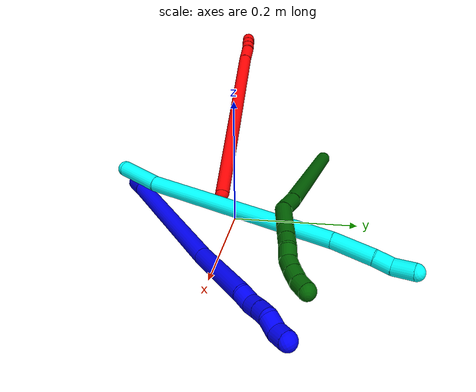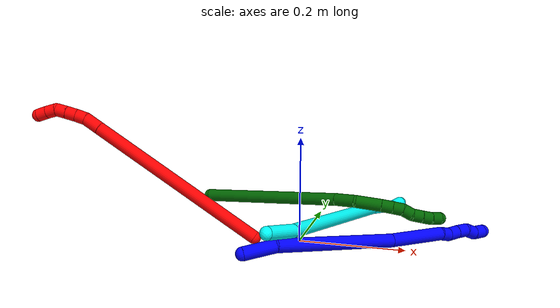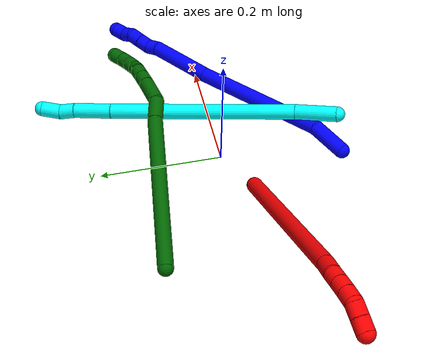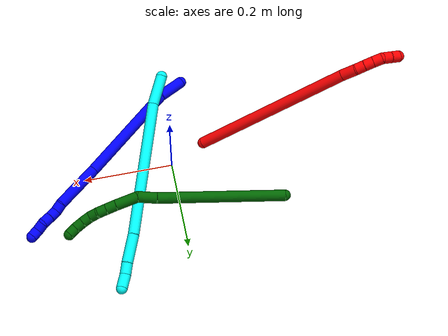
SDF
<sdf version="1.7">
 <world name="default">
  <model name="1">
   <static>0</static>
   <link name="1">
    <collision name="collision-cylinder-e_1_1_4">
     <pose>0.027719 0.004059 0.011163 -0.348718 1.16595 -0.231276</pose>
     <geometry><cylinder><radius>0.0125</radius><length>0.060314</length></cylinder></geometry>
     <surface>
      <friction><ode><mu>1.16</mu><mu2>1.16</mu2><slip1>0</slip1><slip2>0</slip2></ode></friction>
      <contact><ode><kp>1e+06</kp><kd>1</kd><max_vel>0</max_vel><min_depth>0.001</min_depth></ode></contact>
     </surface>
    </collision>
    <visual name="visual-cylinder-e_1_1_4">
     <pose>0.027719 0.004059 0.011163 -0.348718 1.16595 -0.231276</pose>
     <geometry><cylinder><radius>0.0125</radius><length>0.060314</length></cylinder></geometry>
     <material><ambient>0 0 1 1</ambient></material>
    </visual>
    <collision name="collision-cylinder-e_2_4_5">
     <pose>0.147286 0.014483 0.092315 -0.090705 0.917672 -0.044832</pose>
     <geometry><cylinder><radius>0.0125</radius><length>0.2313</length></cylinder></geometry>
     <surface>
      <friction><ode><mu>1.16</mu><mu2>1.16</mu2><slip1>0</slip1><slip2>0</slip2></ode></friction>
      <contact><ode><kp>1e+06</kp><kd>1</kd><max_vel>0</max_vel><min_depth>0.001</min_depth></ode></contact>
     </surface>
    </collision>
    <visual name="visual-cylinder-e_2_4_5">
     <pose>0.147286 0.014483 0.092315 -0.090705 0.917672 -0.044832</pose>
     <geometry><cylinder><radius>0.0125</radius><length>0.2313</length></cylinder></geometry>
     <material><ambient>0 0 1 1</ambient></material>
    </visual>
    <collision name="collision-cylinder-e_3_5_6">
     <pose>0.284541 0.022809 0.191206 -0.067696 1.0029 -0.03712</pose>
     <geometry><cylinder><radius>0.0125</radius><length>0.107721</length></cylinder></geometry>
     <surface>
      <friction><ode><mu>1.16</mu><mu2>1.16</mu2><slip1>0</slip1><slip2>0</slip2></ode></friction>
      <contact><ode><kp>1e+06</kp><kd>1</kd><max_vel>0</max_vel><min_depth>0.001</min_depth></ode></contact>
     </surface>
    </collision>
    <visual name="visual-cylinder-e_3_5_6">
     <pose>0.284541 0.022809 0.191206 -0.067696 1.0029 -0.03712</pose>
     <geometry><cylinder><radius>0.0125</radius><length>0.107721</length></cylinder></geometry>
     <material><ambient>0 0 1 1</ambient></material>
    </visual>
    <collision name="collision-cylinder-e_4_6_7">
     <pose>0.336863 0.024677 0.227555 0.012235 0.74851 0.004805</pose>
     <geometry><cylinder><radius>0.0125</radius><length>0.020324</length></cylinder></geometry>
     <surface>
      <friction><ode><mu>1.16</mu><mu2>1.16</mu2><slip1>0</slip1><slip2>0</slip2></ode></friction>
      <contact><ode><kp>1e+06</kp><kd>1</kd><max_vel>0</max_vel><min_depth>0.001</min_depth></ode></contact>
     </surface>
    </collision>
    <visual name="visual-cylinder-e_4_6_7">
     <pose>0.336863 0.024677 0.227555 0.012235 0.74851 0.004805</pose>
     <geometry><cylinder><radius>0.0125</radius><length>0.020324</length></cylinder></geometry>
     <material><ambient>0 0 1 1</ambient></material>
    </visual>
    <collision name="collision-cylinder-e_5_7_8">
     <pose>0.352889 0.02457 0.239298 0.003776 1.12998 0.002394</pose>
     <geometry><cylinder><radius>0.0125</radius><length>0.020146</length></cylinder></geometry>
     <surface>
      <friction><ode><mu>1.16</mu><mu2>1.16</mu2><slip1>0</slip1><slip2>0</slip2></ode></friction>
      <contact><ode><kp>1e+06</kp><kd>1</kd><max_vel>0</max_vel><min_depth>0.001</min_depth></ode></contact>
     </surface>
    </collision>
    <visual name="visual-cylinder-e_5_7_8">
     <pose>0.352889 0.02457 0.239298 0.003776 1.12998 0.002394</pose>
     <geometry><cylinder><radius>0.0125</radius><length>0.020146</length></cylinder></geometry>
     <material><ambient>0 0 1 1</ambient></material>
    </visual>
    <collision name="collision-cylinder-e_6_8_9">
     <pose>0.370919 0.025174 0.248194 -0.134042 1.09112 -0.081442</pose>
     <geometry><cylinder><radius>0.0125</radius><length>0.020109</length></cylinder></geometry>
     <surface>
      <friction><ode><mu>1.16</mu><mu2>1.16</mu2><slip1>0</slip1><slip2>0</slip2></ode></friction>
      <contact><ode><kp>1e+06</kp><kd>1</kd><max_vel>0</max_vel><min_depth>0.001</min_depth></ode></contact>
     </surface>
    </collision>
    <visual name="visual-cylinder-e_6_8_9">
     <pose>0.370919 0.025174 0.248194 -0.134042 1.09112 -0.081442</pose>
     <geometry><cylinder><radius>0.0125</radius><length>0.020109</length></cylinder></geometry>
     <material><ambient>0 0 1 1</ambient></material>
    </visual>
    <collision name="collision-cylinder-e_7_9_10">
     <pose>0.385467 0.027155 0.260989 -0.164534 0.59539 -0.050584</pose>
     <geometry><cylinder><radius>0.0125</radius><length>0.02007</length></cylinder></geometry>
     <surface>
      <friction><ode><mu>1.16</mu><mu2>1.16</mu2><slip1>0</slip1><slip2>0</slip2></ode></friction>
      <contact><ode><kp>1e+06</kp><kd>1</kd><max_vel>0</max_vel><min_depth>0.001</min_depth></ode></contact>
     </surface>
    </collision>
    <visual name="visual-cylinder-e_7_9_10">
     <pose>0.385467 0.027155 0.260989 -0.164534 0.59539 -0.050584</pose>
     <geometry><cylinder><radius>0.0125</radius><length>0.02007</length></cylinder></geometry>
     <material><ambient>0 0 1 1</ambient></material>
    </visual>
    <collision name="collision-cylinder-e_8_10_2">
     <pose>0.399667 0.028438 0.274349 0.014942 1.02858 0.008442</pose>
     <geometry><cylinder><radius>0.0125</radius><length>0.020015</length></cylinder></geometry>
     <surface>
      <friction><ode><mu>1.16</mu><mu2>1.16</mu2><slip1>0</slip1><slip2>0</slip2></ode></friction>
      <contact><ode><kp>1e+06</kp><kd>1</kd><max_vel>0</max_vel><min_depth>0.001</min_depth></ode></contact>
     </surface>
    </collision>
    <visual name="visual-cylinder-e_8_10_2">
     <pose>0.399667 0.028438 0.274349 0.014942 1.02858 0.008442</pose>
     <geometry><cylinder><radius>0.0125</radius><length>0.020015</length></cylinder></geometry>
     <material><ambient>0 0 1 1</ambient></material>
    </visual>
    <collision name="collision-sphere-2">
     <pose>0.408239 0.028361 0.279512 0 -0 0</pose>
     <geometry><sphere><radius>0.0125</radius></sphere></geometry>
     <surface>
      <friction><ode><mu>1.16</mu><mu2>1.16</mu2><slip1>0</slip1><slip2>0</slip2></ode></friction>
      <contact><ode><kp>1e+06</kp><kd>1</kd><max_vel>0</max_vel><min_depth>0.001</min_depth></ode></contact>
     </surface>
    </collision>
    <visual name="visual-sphere-2">
     <pose>0.408239 0.028361 0.279512 0 -0 0</pose>
     <geometry><sphere><radius>0.0125</radius></sphere></geometry>
     <material><ambient>0 0 1 1</ambient></material>
    </visual>
    <collision name="collision-sphere-10">
     <pose>0.391095 0.028516 0.269185 0 -0 0</pose>
     <geometry><sphere><radius>0.0125</radius></sphere></geometry>
     <surface>
      <friction><ode><mu>1.16</mu><mu2>1.16</mu2><slip1>0</slip1><slip2>0</slip2></ode></friction>
      <contact><ode><kp>1e+06</kp><kd>1</kd><max_vel>0</max_vel><min_depth>0.001</min_depth></ode></contact>
     </surface>
    </collision>
    <visual name="visual-sphere-10">
     <pose>0.391095 0.028516 0.269185 0 -0 0</pose>
     <geometry><sphere><radius>0.0125</radius></sphere></geometry>
     <material><ambient>0 0 1 1</ambient></material>
    </visual>
    <collision name="collision-sphere-9">
     <pose>0.379839 0.025794 0.252793 0 -0 0</pose>
     <geometry><sphere><radius>0.0125</radius></sphere></geometry>
     <surface>
      <friction><ode><mu>1.16</mu><mu2>1.16</mu2><slip1>0</slip1><slip2>0</slip2></ode></friction>
      <contact><ode><kp>1e+06</kp><kd>1</kd><max_vel>0</max_vel><min_depth>0.001</min_depth></ode></contact>
     </surface>
    </collision>
    <visual name="visual-sphere-9">
     <pose>0.379839 0.025794 0.252793 0 -0 0</pose>
     <geometry><sphere><radius>0.0125</radius></sphere></geometry>
     <material><ambient>0 0 1 1</ambient></material>
    </visual>
    <collision name="collision-sphere-4">
     <pose>0.055438 0.008117 0.022327 0 -0 0</pose>
     <geometry><sphere><radius>0.0125</radius></sphere></geometry>
     <surface>
      <friction><ode><mu>1.16</mu><mu2>1.16</mu2><slip1>0</slip1><slip2>0</slip2></ode></friction>
      <contact><ode><kp>1e+06</kp><kd>1</kd><max_vel>0</max_vel><min_depth>0.001</min_depth></ode></contact>
     </surface>
    </collision>
    <visual name="visual-sphere-4">
     <pose>0.055438 0.008117 0.022327 0 -0 0</pose>
     <geometry><sphere><radius>0.0125</radius></sphere></geometry>
     <material><ambient>0 0 1 1</ambient></material>
    </visual>
    <collision name="collision-sphere-1">
     <geometry><sphere><radius>0.0125</radius></sphere></geometry>
     <surface>
      <friction><ode><mu>1.16</mu><mu2>1.16</mu2><slip1>0</slip1><slip2>0</slip2></ode></friction>
      <contact><ode><kp>1e+06</kp><kd>1</kd><max_vel>0</max_vel><min_depth>0.001</min_depth></ode></contact>
     </surface>
    </collision>
    <visual name="visual-sphere-1">
     <geometry><sphere><radius>0.0125</radius></sphere></geometry>
     <material><ambient>0 0 1 1</ambient></material>
    </visual>
    <collision name="collision-sphere-8">
     <pose>0.361999 0.024554 0.243596 0 -0 0</pose>
     <geometry><sphere><radius>0.0125</radius></sphere></geometry>
     <surface>
      <friction><ode><mu>1.16</mu><mu2>1.16</mu2><slip1>0</slip1><slip2>0</slip2></ode></friction>
      <contact><ode><kp>1e+06</kp><kd>1</kd><max_vel>0</max_vel><min_depth>0.001</min_depth></ode></contact>
     </surface>
    </collision>
    <visual name="visual-sphere-8">
     <pose>0.361999 0.024554 0.243596 0 -0 0</pose>
     <geometry><sphere><radius>0.0125</radius></sphere></geometry>
     <material><ambient>0 0 1 1</ambient></material>
    </visual>
    <collision name="collision-sphere-5">
     <pose>0.239134 0.020849 0.162303 0 -0 0</pose>
     <geometry><sphere><radius>0.0125</radius></sphere></geometry>
     <surface>
      <friction><ode><mu>1.16</mu><mu2>1.16</mu2><slip1>0</slip1><slip2>0</slip2></ode></friction>
      <contact><ode><kp>1e+06</kp><kd>1</kd><max_vel>0</max_vel><min_depth>0.001</min_depth></ode></contact>
     </surface>
    </collision>
    <visual name="visual-sphere-5">
     <pose>0.239134 0.020849 0.162303 0 -0 0</pose>
     <geometry><sphere><radius>0.0125</radius></sphere></geometry>
     <material><ambient>0 0 1 1</ambient></material>
    </visual>
    <collision name="collision-sphere-6">
     <pose>0.329947 0.024768 0.220109 0 -0 0</pose>
     <geometry><sphere><radius>0.0125</radius></sphere></geometry>
     <surface>
      <friction><ode><mu>1.16</mu><mu2>1.16</mu2><slip1>0</slip1><slip2>0</slip2></ode></friction>
      <contact><ode><kp>1e+06</kp><kd>1</kd><max_vel>0</max_vel><min_depth>0.001</min_depth></ode></contact>
     </surface>
    </collision>
    <visual name="visual-sphere-6">
     <pose>0.329947 0.024768 0.220109 0 -0 0</pose>
     <geometry><sphere><radius>0.0125</radius></sphere></geometry>
     <material><ambient>0 0 1 1</ambient></material>
    </visual>
    <collision name="collision-sphere-7">
     <pose>0.343779 0.024586 0.235 0 -0 0</pose>
     <geometry><sphere><radius>0.0125</radius></sphere></geometry>
     <surface>
      <friction><ode><mu>1.16</mu><mu2>1.16</mu2><slip1>0</slip1><slip2>0</slip2></ode></friction>
      <contact><ode><kp>1e+06</kp><kd>1</kd><max_vel>0</max_vel><min_depth>0.001</min_depth></ode></contact>
     </surface>
    </collision>
    <visual name="visual-sphere-7">
     <pose>0.343779 0.024586 0.235 0 -0 0</pose>
     <geometry><sphere><radius>0.0125</radius></sphere></geometry>
     <material><ambient>0 0 1 1</ambient></material>
    </visual>
    <inertial>
     <pose>0.207081 0.017337 0.135577 0 -0 0</pose>
     <mass>0.5</mass>
     <inertia>
      <ixx>0.000701</ixx>
      <ixy>0</ixy>
      <ixz>0</ixz>
      <iyy>0.001144</iyy>
      <iyz>0</iyz>
      <izz>-0.000985</izz>
     </inertia>
    </inertial>
   </link>
   <pose>-0.055217 -0.187703 0.033776 -2.88548 -0.555201 0.57735</pose>
  </model>
  <model name="2">
   <static>0</static>
   <link name="2">
    <collision name="collision-cylinder-e_1_1_4">
     <pose>-0.018282 0.003272 0.181965 -0.017981 -0.100117 0.000901</pose>
     <geometry><cylinder><radius>0.0125</radius><length>0.36582</length></cylinder></geometry>
     <surface>
      <friction><ode><mu>1.16</mu><mu2>1.16</mu2><slip1>0</slip1><slip2>0</slip2></ode></friction>
      <contact><ode><kp>1e+06</kp><kd>1</kd><max_vel>0</max_vel><min_depth>0.001</min_depth></ode></contact>
     </surface>
    </collision>
    <visual name="visual-cylinder-e_1_1_4">
     <pose>-0.018282 0.003272 0.181965 -0.017981 -0.100117 0.000901</pose>
     <geometry><cylinder><radius>0.0125</radius><length>0.36582</length></cylinder></geometry>
     <material><ambient>1 0 0 1</ambient></material>
    </visual>
    <collision name="collision-cylinder-e_2_4_5">
     <pose>-0.038171 0.00784 0.380282 -0.079073 -0.097655 0.003866</pose>
     <geometry><cylinder><radius>0.0125</radius><length>0.032965</length></cylinder></geometry>
     <surface>
      <friction><ode><mu>1.16</mu><mu2>1.16</mu2><slip1>0</slip1><slip2>0</slip2></ode></friction>
      <contact><ode><kp>1e+06</kp><kd>1</kd><max_vel>0</max_vel><min_depth>0.001</min_depth></ode></contact>
     </surface>
    </collision>
    <visual name="visual-cylinder-e_2_4_5">
     <pose>-0.038171 0.00784 0.380282 -0.079073 -0.097655 0.003866</pose>
     <geometry><cylinder><radius>0.0125</radius><length>0.032965</length></cylinder></geometry>
     <material><ambient>1 0 0 1</ambient></material>
    </visual>
    <collision name="collision-cylinder-e_3_5_6">
     <pose>-0.043397 0.00937 0.406021 -0.024933 -0.367938 0.00464</pose>
     <geometry><cylinder><radius>0.0125</radius><length>0.020126</length></cylinder></geometry>
     <surface>
      <friction><ode><mu>1.16</mu><mu2>1.16</mu2><slip1>0</slip1><slip2>0</slip2></ode></friction>
      <contact><ode><kp>1e+06</kp><kd>1</kd><max_vel>0</max_vel><min_depth>0.001</min_depth></ode></contact>
     </surface>
    </collision>
    <visual name="visual-cylinder-e_3_5_6">
     <pose>-0.043397 0.00937 0.406021 -0.024933 -0.367938 0.00464</pose>
     <geometry><cylinder><radius>0.0125</radius><length>0.020126</length></cylinder></geometry>
     <material><ambient>1 0 0 1</ambient></material>
    </visual>
    <collision name="collision-cylinder-e_4_6_7">
     <pose>-0.0511 0.009895 0.42474 -0.031152 -0.412213 0.006514</pose>
     <geometry><cylinder><radius>0.0125</radius><length>0.020381</length></cylinder></geometry>
     <surface>
      <friction><ode><mu>1.16</mu><mu2>1.16</mu2><slip1>0</slip1><slip2>0</slip2></ode></friction>
      <contact><ode><kp>1e+06</kp><kd>1</kd><max_vel>0</max_vel><min_depth>0.001</min_depth></ode></contact>
     </surface>
    </collision>
    <visual name="visual-cylinder-e_4_6_7">
     <pose>-0.0511 0.009895 0.42474 -0.031152 -0.412213 0.006514</pose>
     <geometry><cylinder><radius>0.0125</radius><length>0.020381</length></cylinder></geometry>
     <material><ambient>1 0 0 1</ambient></material>
    </visual>
    <collision name="collision-cylinder-e_5_7_8">
     <pose>-0.059453 0.010753 0.443465 -0.060368 -0.426125 0.013064</pose>
     <geometry><cylinder><radius>0.0125</radius><length>0.020666</length></cylinder></geometry>
     <surface>
      <friction><ode><mu>1.16</mu><mu2>1.16</mu2><slip1>0</slip1><slip2>0</slip2></ode></friction>
      <contact><ode><kp>1e+06</kp><kd>1</kd><max_vel>0</max_vel><min_depth>0.001</min_depth></ode></contact>
     </surface>
    </collision>
    <visual name="visual-cylinder-e_5_7_8">
     <pose>-0.059453 0.010753 0.443465 -0.060368 -0.426125 0.013064</pose>
     <geometry><cylinder><radius>0.0125</radius><length>0.020666</length></cylinder></geometry>
     <material><ambient>1 0 0 1</ambient></material>
    </visual>
    <collision name="collision-cylinder-e_6_8_9">
     <pose>-0.071543 0.01351 0.458719 -0.357339 -0.895805 0.173108</pose>
     <geometry><cylinder><radius>0.0125</radius><length>0.020028</length></cylinder></geometry>
     <surface>
      <friction><ode><mu>1.16</mu><mu2>1.16</mu2><slip1>0</slip1><slip2>0</slip2></ode></friction>
      <contact><ode><kp>1e+06</kp><kd>1</kd><max_vel>0</max_vel><min_depth>0.001</min_depth></ode></contact>
     </surface>
    </collision>
    <visual name="visual-cylinder-e_6_8_9">
     <pose>-0.071543 0.01351 0.458719 -0.357339 -0.895805 0.173108</pose>
     <geometry><cylinder><radius>0.0125</radius><length>0.020028</length></cylinder></geometry>
     <material><ambient>1 0 0 1</ambient></material>
    </visual>
    <collision name="collision-cylinder-e_7_9_2">
     <pose>-0.087504 0.017885 0.469971 -0.385324 -0.950615 0.200131</pose>
     <geometry><cylinder><radius>0.0125</radius><length>0.020014</length></cylinder></geometry>
     <surface>
      <friction><ode><mu>1.16</mu><mu2>1.16</mu2><slip1>0</slip1><slip2>0</slip2></ode></friction>
      <contact><ode><kp>1e+06</kp><kd>1</kd><max_vel>0</max_vel><min_depth>0.001</min_depth></ode></contact>
     </surface>
    </collision>
    <visual name="visual-cylinder-e_7_9_2">
     <pose>-0.087504 0.017885 0.469971 -0.385324 -0.950615 0.200131</pose>
     <geometry><cylinder><radius>0.0125</radius><length>0.020014</length></cylinder></geometry>
     <material><ambient>1 0 0 1</ambient></material>
    </visual>
    <collision name="collision-sphere-2">
     <pose>-0.095647 0.020071 0.47536 0 -0 0</pose>
     <geometry><sphere><radius>0.0125</radius></sphere></geometry>
     <surface>
      <friction><ode><mu>1.16</mu><mu2>1.16</mu2><slip1>0</slip1><slip2>0</slip2></ode></friction>
      <contact><ode><kp>1e+06</kp><kd>1</kd><max_vel>0</max_vel><min_depth>0.001</min_depth></ode></contact>
     </surface>
    </collision>
    <visual name="visual-sphere-2">
     <pose>-0.095647 0.020071 0.47536 0 -0 0</pose>
     <geometry><sphere><radius>0.0125</radius></sphere></geometry>
     <material><ambient>1 0 0 1</ambient></material>
    </visual>
    <collision name="collision-sphere-9">
     <pose>-0.079361 0.015699 0.464581 0 -0 0</pose>
     <geometry><sphere><radius>0.0125</radius></sphere></geometry>
     <surface>
      <friction><ode><mu>1.16</mu><mu2>1.16</mu2><slip1>0</slip1><slip2>0</slip2></ode></friction>
      <contact><ode><kp>1e+06</kp><kd>1</kd><max_vel>0</max_vel><min_depth>0.001</min_depth></ode></contact>
     </surface>
    </collision>
    <visual name="visual-sphere-9">
     <pose>-0.079361 0.015699 0.464581 0 -0 0</pose>
     <geometry><sphere><radius>0.0125</radius></sphere></geometry>
     <material><ambient>1 0 0 1</ambient></material>
    </visual>
    <collision name="collision-sphere-4">
     <pose>-0.036564 0.006544 0.36393 0 -0 0</pose>
     <geometry><sphere><radius>0.0125</radius></sphere></geometry>
     <surface>
      <friction><ode><mu>1.16</mu><mu2>1.16</mu2><slip1>0</slip1><slip2>0</slip2></ode></friction>
      <contact><ode><kp>1e+06</kp><kd>1</kd><max_vel>0</max_vel><min_depth>0.001</min_depth></ode></contact>
     </surface>
    </collision>
    <visual name="visual-sphere-4">
     <pose>-0.036564 0.006544 0.36393 0 -0 0</pose>
     <geometry><sphere><radius>0.0125</radius></sphere></geometry>
     <material><ambient>1 0 0 1</ambient></material>
    </visual>
    <collision name="collision-sphere-1">
     <geometry><sphere><radius>0.0125</radius></sphere></geometry>
     <surface>
      <friction><ode><mu>1.16</mu><mu2>1.16</mu2><slip1>0</slip1><slip2>0</slip2></ode></friction>
      <contact><ode><kp>1e+06</kp><kd>1</kd><max_vel>0</max_vel><min_depth>0.001</min_depth></ode></contact>
     </surface>
    </collision>
    <visual name="visual-sphere-1">
     <geometry><sphere><radius>0.0125</radius></sphere></geometry>
     <material><ambient>1 0 0 1</ambient></material>
    </visual>
    <collision name="collision-sphere-8">
     <pose>-0.063725 0.011321 0.452856 0 -0 0</pose>
     <geometry><sphere><radius>0.0125</radius></sphere></geometry>
     <surface>
      <friction><ode><mu>1.16</mu><mu2>1.16</mu2><slip1>0</slip1><slip2>0</slip2></ode></friction>
      <contact><ode><kp>1e+06</kp><kd>1</kd><max_vel>0</max_vel><min_depth>0.001</min_depth></ode></contact>
     </surface>
    </collision>
    <visual name="visual-sphere-8">
     <pose>-0.063725 0.011321 0.452856 0 -0 0</pose>
     <geometry><sphere><radius>0.0125</radius></sphere></geometry>
     <material><ambient>1 0 0 1</ambient></material>
    </visual>
    <collision name="collision-sphere-5">
     <pose>-0.039778 0.009136 0.396635 0 -0 0</pose>
     <geometry><sphere><radius>0.0125</radius></sphere></geometry>
     <surface>
      <friction><ode><mu>1.16</mu><mu2>1.16</mu2><slip1>0</slip1><slip2>0</slip2></ode></friction>
      <contact><ode><kp>1e+06</kp><kd>1</kd><max_vel>0</max_vel><min_depth>0.001</min_depth></ode></contact>
     </surface>
    </collision>
    <visual name="visual-sphere-5">
     <pose>-0.039778 0.009136 0.396635 0 -0 0</pose>
     <geometry><sphere><radius>0.0125</radius></sphere></geometry>
     <material><ambient>1 0 0 1</ambient></material>
    </visual>
    <collision name="collision-sphere-6">
     <pose>-0.047017 0.009604 0.415408 0 -0 0</pose>
     <geometry><sphere><radius>0.0125</radius></sphere></geometry>
     <surface>
      <friction><ode><mu>1.16</mu><mu2>1.16</mu2><slip1>0</slip1><slip2>0</slip2></ode></friction>
      <contact><ode><kp>1e+06</kp><kd>1</kd><max_vel>0</max_vel><min_depth>0.001</min_depth></ode></contact>
     </surface>
    </collision>
    <visual name="visual-sphere-6">
     <pose>-0.047017 0.009604 0.415408 0 -0 0</pose>
     <geometry><sphere><radius>0.0125</radius></sphere></geometry>
     <material><ambient>1 0 0 1</ambient></material>
    </visual>
    <collision name="collision-sphere-7">
     <pose>-0.055182 0.010186 0.434073 0 -0 0</pose>
     <geometry><sphere><radius>0.0125</radius></sphere></geometry>
     <surface>
      <friction><ode><mu>1.16</mu><mu2>1.16</mu2><slip1>0</slip1><slip2>0</slip2></ode></friction>
      <contact><ode><kp>1e+06</kp><kd>1</kd><max_vel>0</max_vel><min_depth>0.001</min_depth></ode></contact>
     </surface>
    </collision>
    <visual name="visual-sphere-7">
     <pose>-0.055182 0.010186 0.434073 0 -0 0</pose>
     <geometry><sphere><radius>0.0125</radius></sphere></geometry>
     <material><ambient>1 0 0 1</ambient></material>
    </visual>
    <inertial>
     <pose>-0.028548 0.005393 0.247377 0 -0 0</pose>
     <mass>0.5</mass>
     <inertia><ixx>0.00408</ixx><ixy>0</ixy><ixz>0</ixz><iyy>0.00411</iyy><iyz>0</iyz><izz>0.000376</izz></inertia>
    </inertial>
   </link>
   <pose>-0.078875 -0.037054 0.011521 -0.472237 -0.810084 0.609993</pose>
  </model>
  <model name="3">
   <static>0</static>
   <link name="3">
    <collision name="collision-cylinder-e_1_1_4">
     <pose>0.019154 0.011517 0.026436 -0.410863 0.586328 -0.125633</pose>
     <geometry><cylinder><radius>0.0125</radius><length>0.069235</length></cylinder></geometry>
     <surface>
      <friction><ode><mu>1.16</mu><mu2>1.16</mu2><slip1>0</slip1><slip2>0</slip2></ode></friction>
      <contact><ode><kp>1e+06</kp><kd>1</kd><max_vel>0</max_vel><min_depth>0.001</min_depth></ode></contact>
     </surface>
    </collision>
    <visual name="visual-cylinder-e_1_1_4">
     <pose>0.019154 0.011517 0.026436 -0.410863 0.586328 -0.125633</pose>
     <geometry><cylinder><radius>0.0125</radius><length>0.069235</length></cylinder></geometry>
     <material><ambient>0.003922 1 0.996078 1</ambient></material>
    </visual>
    <collision name="collision-cylinder-e_2_4_5">
     <pose>0.105212 0.090027 0.174017 -0.505145 0.450187 -0.118052</pose>
     <geometry><cylinder><radius>0.0125</radius><length>0.307509</length></cylinder></geometry>
     <surface>
      <friction><ode><mu>1.16</mu><mu2>1.16</mu2><slip1>0</slip1><slip2>0</slip2></ode></friction>
      <contact><ode><kp>1e+06</kp><kd>1</kd><max_vel>0</max_vel><min_depth>0.001</min_depth></ode></contact>
     </surface>
    </collision>
    <visual name="visual-cylinder-e_2_4_5">
     <pose>0.105212 0.090027 0.174017 -0.505145 0.450187 -0.118052</pose>
     <geometry><cylinder><radius>0.0125</radius><length>0.307509</length></cylinder></geometry>
     <material><ambient>0.003922 1 0.996078 1</ambient></material>
    </visual>
    <collision name="collision-cylinder-e_3_5_6">
     <pose>0.188423 0.16937 0.319736 -0.465666 0.535229 -0.129857</pose>
     <geometry><cylinder><radius>0.0125</radius><length>0.063949</length></cylinder></geometry>
     <surface>
      <friction><ode><mu>1.16</mu><mu2>1.16</mu2><slip1>0</slip1><slip2>0</slip2></ode></friction>
      <contact><ode><kp>1e+06</kp><kd>1</kd><max_vel>0</max_vel><min_depth>0.001</min_depth></ode></contact>
     </surface>
    </collision>
    <visual name="visual-cylinder-e_3_5_6">
     <pose>0.188423 0.16937 0.319736 -0.465666 0.535229 -0.129857</pose>
     <geometry><cylinder><radius>0.0125</radius><length>0.063949</length></cylinder></geometry>
     <material><ambient>0.003922 1 0.996078 1</ambient></material>
    </visual>
    <collision name="collision-cylinder-e_4_6_7">
     <pose>0.212153 0.187825 0.353411 -0.590935 0.595247 -0.186186</pose>
     <geometry><cylinder><radius>0.0125</radius><length>0.026471</length></cylinder></geometry>
     <surface>
      <friction><ode><mu>1.16</mu><mu2>1.16</mu2><slip1>0</slip1><slip2>0</slip2></ode></friction>
      <contact><ode><kp>1e+06</kp><kd>1</kd><max_vel>0</max_vel><min_depth>0.001</min_depth></ode></contact>
     </surface>
    </collision>
    <visual name="visual-cylinder-e_4_6_7">
     <pose>0.212153 0.187825 0.353411 -0.590935 0.595247 -0.186186</pose>
     <geometry><cylinder><radius>0.0125</radius><length>0.026471</length></cylinder></geometry>
     <material><ambient>0.003922 1 0.996078 1</ambient></material>
    </visual>
    <collision name="collision-cylinder-e_5_7_2">
     <pose>0.225469 0.199121 0.37693 -0.34549 0.367201 -0.064778</pose>
     <geometry><cylinder><radius>0.0125</radius><length>0.032837</length></cylinder></geometry>
     <surface>
      <friction><ode><mu>1.16</mu><mu2>1.16</mu2><slip1>0</slip1><slip2>0</slip2></ode></friction>
      <contact><ode><kp>1e+06</kp><kd>1</kd><max_vel>0</max_vel><min_depth>0.001</min_depth></ode></contact>
     </surface>
    </collision>
    <visual name="visual-cylinder-e_5_7_2">
     <pose>0.225469 0.199121 0.37693 -0.34549 0.367201 -0.064778</pose>
     <geometry><cylinder><radius>0.0125</radius><length>0.032837</length></cylinder></geometry>
     <material><ambient>0.003922 1 0.996078 1</ambient></material>
    </visual>
    <collision name="collision-sphere-2">
     <pose>0.231363 0.20431 0.391349 0 -0 0</pose>
     <geometry><sphere><radius>0.0125</radius></sphere></geometry>
     <surface>
      <friction><ode><mu>1.16</mu><mu2>1.16</mu2><slip1>0</slip1><slip2>0</slip2></ode></friction>
      <contact><ode><kp>1e+06</kp><kd>1</kd><max_vel>0</max_vel><min_depth>0.001</min_depth></ode></contact>
     </surface>
    </collision>
    <visual name="visual-sphere-2">
     <pose>0.231363 0.20431 0.391349 0 -0 0</pose>
     <geometry><sphere><radius>0.0125</radius></sphere></geometry>
     <material><ambient>0.003922 1 0.996078 1</ambient></material>
    </visual>
    <collision name="collision-sphere-7">
     <pose>0.219574 0.193931 0.362512 0 -0 0</pose>
     <geometry><sphere><radius>0.0125</radius></sphere></geometry>
     <surface>
      <friction><ode><mu>1.16</mu><mu2>1.16</mu2><slip1>0</slip1><slip2>0</slip2></ode></friction>
      <contact><ode><kp>1e+06</kp><kd>1</kd><max_vel>0</max_vel><min_depth>0.001</min_depth></ode></contact>
     </surface>
    </collision>
    <visual name="visual-sphere-7">
     <pose>0.219574 0.193931 0.362512 0 -0 0</pose>
     <geometry><sphere><radius>0.0125</radius></sphere></geometry>
     <material><ambient>0.003922 1 0.996078 1</ambient></material>
    </visual>
    <collision name="collision-sphere-6">
     <pose>0.204732 0.181719 0.34431 0 -0 0</pose>
     <geometry><sphere><radius>0.0125</radius></sphere></geometry>
     <surface>
      <friction><ode><mu>1.16</mu><mu2>1.16</mu2><slip1>0</slip1><slip2>0</slip2></ode></friction>
      <contact><ode><kp>1e+06</kp><kd>1</kd><max_vel>0</max_vel><min_depth>0.001</min_depth></ode></contact>
     </surface>
    </collision>
    <visual name="visual-sphere-6">
     <pose>0.204732 0.181719 0.34431 0 -0 0</pose>
     <geometry><sphere><radius>0.0125</radius></sphere></geometry>
     <material><ambient>0.003922 1 0.996078 1</ambient></material>
    </visual>
    <collision name="collision-sphere-5">
     <pose>0.172115 0.157021 0.295162 0 -0 0</pose>
     <geometry><sphere><radius>0.0125</radius></sphere></geometry>
     <surface>
      <friction><ode><mu>1.16</mu><mu2>1.16</mu2><slip1>0</slip1><slip2>0</slip2></ode></friction>
      <contact><ode><kp>1e+06</kp><kd>1</kd><max_vel>0</max_vel><min_depth>0.001</min_depth></ode></contact>
     </surface>
    </collision>
    <visual name="visual-sphere-5">
     <pose>0.172115 0.157021 0.295162 0 -0 0</pose>
     <geometry><sphere><radius>0.0125</radius></sphere></geometry>
     <material><ambient>0.003922 1 0.996078 1</ambient></material>
    </visual>
    <collision name="collision-sphere-1">
     <geometry><sphere><radius>0.0125</radius></sphere></geometry>
     <surface>
      <friction><ode><mu>1.16</mu><mu2>1.16</mu2><slip1>0</slip1><slip2>0</slip2></ode></friction>
      <contact><ode><kp>1e+06</kp><kd>1</kd><max_vel>0</max_vel><min_depth>0.001</min_depth></ode></contact>
     </surface>
    </collision>
    <visual name="visual-sphere-1">
     <geometry><sphere><radius>0.0125</radius></sphere></geometry>
     <material><ambient>0.003922 1 0.996078 1</ambient></material>
    </visual>
    <collision name="collision-sphere-4">
     <pose>0.038308 0.023034 0.052871 0 -0 0</pose>
     <geometry><sphere><radius>0.0125</radius></sphere></geometry>
     <surface>
      <friction><ode><mu>1.16</mu><mu2>1.16</mu2><slip1>0</slip1><slip2>0</slip2></ode></friction>
      <contact><ode><kp>1e+06</kp><kd>1</kd><max_vel>0</max_vel><min_depth>0.001</min_depth></ode></contact>
     </surface>
    </collision>
    <visual name="visual-sphere-4">
     <pose>0.038308 0.023034 0.052871 0 -0 0</pose>
     <geometry><sphere><radius>0.0125</radius></sphere></geometry>
     <material><ambient>0.003922 1 0.996078 1</ambient></material>
    </visual>
    <inertial>
     <pose>0.117497 0.101646 0.195042 0 -0 0</pose>
     <mass>0.5</mass>
     <inertia>
      <ixx>0.001982</ixx>
      <ixy>0</ixy>
      <ixz>0</ixz>
      <iyy>0.001985</iyy>
      <iyz>0</iyz>
      <izz>-0.002144</izz>
     </inertia>
    </inertial>
   </link>
   <pose>-0.012383 -0.188721 0.074661 -0.627717 0.909952 0.287444</pose>
  </model>
  <model name="6">
   <static>0</static>
   <link name="6">
    <collision name="collision-cylinder-e_1_1_4">
     <pose>0.009625 -0.052932 -0.130828 2.75713 0.068096 0.346496</pose>
     <geometry><cylinder><radius>0.0125</radius><length>0.282916</length></cylinder></geometry>
     <surface>
      <friction><ode><mu>1.16</mu><mu2>1.16</mu2><slip1>0</slip1><slip2>0</slip2></ode></friction>
      <contact><ode><kp>1e+06</kp><kd>1</kd><max_vel>0</max_vel><min_depth>0.001</min_depth></ode></contact>
     </surface>
    </collision>
    <visual name="visual-cylinder-e_1_1_4">
     <pose>0.009625 -0.052932 -0.130828 2.75713 0.068096 0.346496</pose>
     <geometry><cylinder><radius>0.0125</radius><length>0.282916</length></cylinder></geometry>
     <material><ambient>0 0.392157 0.003922 1</ambient></material>
    </visual>
    <collision name="collision-cylinder-e_2_4_5">
     <pose>0.018983 -0.115354 -0.280659 2.67841 -0.012585 -0.053354</pose>
     <geometry><cylinder><radius>0.0125</radius><length>0.042485</length></cylinder></geometry>
     <surface>
      <friction><ode><mu>1.16</mu><mu2>1.16</mu2><slip1>0</slip1><slip2>0</slip2></ode></friction>
      <contact><ode><kp>1e+06</kp><kd>1</kd><max_vel>0</max_vel><min_depth>0.001</min_depth></ode></contact>
     </surface>
    </collision>
    <visual name="visual-cylinder-e_2_4_5">
     <pose>0.018983 -0.115354 -0.280659 2.67841 -0.012585 -0.053354</pose>
     <geometry><cylinder><radius>0.0125</radius><length>0.042485</length></cylinder></geometry>
     <material><ambient>0 0.392157 0.003922 1</ambient></material>
    </visual>
    <collision name="collision-cylinder-e_3_5_6">
     <pose>0.019549 -0.125635 -0.325011 3.11044 0.032826 1.62299</pose>
     <geometry><cylinder><radius>0.0125</radius><length>0.050751</length></cylinder></geometry>
     <surface>
      <friction><ode><mu>1.16</mu><mu2>1.16</mu2><slip1>0</slip1><slip2>0</slip2></ode></friction>
      <contact><ode><kp>1e+06</kp><kd>1</kd><max_vel>0</max_vel><min_depth>0.001</min_depth></ode></contact>
     </surface>
    </collision>
    <visual name="visual-cylinder-e_3_5_6">
     <pose>0.019549 -0.125635 -0.325011 3.11044 0.032826 1.62299</pose>
     <geometry><cylinder><radius>0.0125</radius><length>0.050751</length></cylinder></geometry>
     <material><ambient>0 0.392157 0.003922 1</ambient></material>
    </visual>
    <collision name="collision-cylinder-e_4_6_7">
     <pose>0.020306 -0.126399 -0.361904 -3.13934 -0.006568 2.48022</pose>
     <geometry><cylinder><radius>0.0125</radius><length>0.023087</length></cylinder></geometry>
     <surface>
      <friction><ode><mu>1.16</mu><mu2>1.16</mu2><slip1>0</slip1><slip2>0</slip2></ode></friction>
      <contact><ode><kp>1e+06</kp><kd>1</kd><max_vel>0</max_vel><min_depth>0.001</min_depth></ode></contact>
     </surface>
    </collision>
    <visual name="visual-cylinder-e_4_6_7">
     <pose>0.020306 -0.126399 -0.361904 -3.13934 -0.006568 2.48022</pose>
     <geometry><cylinder><radius>0.0125</radius><length>0.023087</length></cylinder></geometry>
     <material><ambient>0 0.392157 0.003922 1</ambient></material>
    </visual>
    <collision name="collision-cylinder-e_5_7_8">
     <pose>0.020166 -0.126229 -0.383824 -3.12777 -0.006148 0.837106</pose>
     <geometry><cylinder><radius>0.0125</radius><length>0.020756</length></cylinder></geometry>
     <surface>
      <friction><ode><mu>1.16</mu><mu2>1.16</mu2><slip1>0</slip1><slip2>0</slip2></ode></friction>
      <contact><ode><kp>1e+06</kp><kd>1</kd><max_vel>0</max_vel><min_depth>0.001</min_depth></ode></contact>
     </surface>
    </collision>
    <visual name="visual-cylinder-e_5_7_8">
     <pose>0.020166 -0.126229 -0.383824 -3.12777 -0.006148 0.837106</pose>
     <geometry><cylinder><radius>0.0125</radius><length>0.020756</length></cylinder></geometry>
     <material><ambient>0 0.392157 0.003922 1</ambient></material>
    </visual>
    <collision name="collision-cylinder-e_6_8_9">
     <pose>0.017139 -0.125034 -0.403694 -3.03121 -0.300785 2.44237</pose>
     <geometry><cylinder><radius>0.0125</radius><length>0.020002</length></cylinder></geometry>
     <surface>
      <friction><ode><mu>1.16</mu><mu2>1.16</mu2><slip1>0</slip1><slip2>0</slip2></ode></friction>
      <contact><ode><kp>1e+06</kp><kd>1</kd><max_vel>0</max_vel><min_depth>0.001</min_depth></ode></contact>
     </surface>
    </collision>
    <visual name="visual-cylinder-e_6_8_9">
     <pose>0.017139 -0.125034 -0.403694 -3.03121 -0.300785 2.44237</pose>
     <geometry><cylinder><radius>0.0125</radius><length>0.020002</length></cylinder></geometry>
     <material><ambient>0 0.392157 0.003922 1</ambient></material>
    </visual>
    <collision name="collision-cylinder-e_7_9_10">
     <pose>0.014569 -0.121688 -0.422915 -2.91 0.039295 -0.334714</pose>
     <geometry><cylinder><radius>0.0125</radius><length>0.020002</length></cylinder></geometry>
     <surface>
      <friction><ode><mu>1.16</mu><mu2>1.16</mu2><slip1>0</slip1><slip2>0</slip2></ode></friction>
      <contact><ode><kp>1e+06</kp><kd>1</kd><max_vel>0</max_vel><min_depth>0.001</min_depth></ode></contact>
     </surface>
    </collision>
    <visual name="visual-cylinder-e_7_9_10">
     <pose>0.014569 -0.121688 -0.422915 -2.91 0.039295 -0.334714</pose>
     <geometry><cylinder><radius>0.0125</radius><length>0.020002</length></cylinder></geometry>
     <material><ambient>0 0.392157 0.003922 1</ambient></material>
    </visual>
    <collision name="collision-cylinder-e_8_10_11">
     <pose>0.015703 -0.11658 -0.442209 -2.85558 0.074116 -0.50402</pose>
     <geometry><cylinder><radius>0.0125</radius><length>0.020001</length></cylinder></geometry>
     <surface>
      <friction><ode><mu>1.16</mu><mu2>1.16</mu2><slip1>0</slip1><slip2>0</slip2></ode></friction>
      <contact><ode><kp>1e+06</kp><kd>1</kd><max_vel>0</max_vel><min_depth>0.001</min_depth></ode></contact>
     </surface>
    </collision>
    <visual name="visual-cylinder-e_8_10_11">
     <pose>0.015703 -0.11658 -0.442209 -2.85558 0.074116 -0.50402</pose>
     <geometry><cylinder><radius>0.0125</radius><length>0.020001</length></cylinder></geometry>
     <material><ambient>0 0.392157 0.003922 1</ambient></material>
    </visual>
    <collision name="collision-cylinder-e_9_11_2">
     <pose>0.018921 -0.110135 -0.460758 -2.75737 0.250423 -1.14868</pose>
     <geometry><cylinder><radius>0.0125</radius><length>0.02</length></cylinder></geometry>
     <surface>
      <friction><ode><mu>1.16</mu><mu2>1.16</mu2><slip1>0</slip1><slip2>0</slip2></ode></friction>
      <contact><ode><kp>1e+06</kp><kd>1</kd><max_vel>0</max_vel><min_depth>0.001</min_depth></ode></contact>
     </surface>
    </collision>
    <visual name="visual-cylinder-e_9_11_2">
     <pose>0.018921 -0.110135 -0.460758 -2.75737 0.250423 -1.14868</pose>
     <geometry><cylinder><radius>0.0125</radius><length>0.02</length></cylinder></geometry>
     <material><ambient>0 0.392157 0.003922 1</ambient></material>
    </visual>
    <collision name="collision-sphere-2">
     <pose>0.021399 -0.106504 -0.46974 0 -0 0</pose>
     <geometry><sphere><radius>0.0125</radius></sphere></geometry>
     <surface>
      <friction><ode><mu>1.16</mu><mu2>1.16</mu2><slip1>0</slip1><slip2>0</slip2></ode></friction>
      <contact><ode><kp>1e+06</kp><kd>1</kd><max_vel>0</max_vel><min_depth>0.001</min_depth></ode></contact>
     </surface>
    </collision>
    <visual name="visual-sphere-2">
     <pose>0.021399 -0.106504 -0.46974 0 -0 0</pose>
     <geometry><sphere><radius>0.0125</radius></sphere></geometry>
     <material><ambient>0 0.392157 0.003922 1</ambient></material>
    </visual>
    <collision name="collision-sphere-11">
     <pose>0.016443 -0.113767 -0.451777 0 -0 0</pose>
     <geometry><sphere><radius>0.0125</radius></sphere></geometry>
     <surface>
      <friction><ode><mu>1.16</mu><mu2>1.16</mu2><slip1>0</slip1><slip2>0</slip2></ode></friction>
      <contact><ode><kp>1e+06</kp><kd>1</kd><max_vel>0</max_vel><min_depth>0.001</min_depth></ode></contact>
     </surface>
    </collision>
    <visual name="visual-sphere-11">
     <pose>0.016443 -0.113767 -0.451777 0 -0 0</pose>
     <geometry><sphere><radius>0.0125</radius></sphere></geometry>
     <material><ambient>0 0.392157 0.003922 1</ambient></material>
    </visual>
    <collision name="collision-sphere-10">
     <pose>0.014962 -0.119394 -0.432641 0 -0 0</pose>
     <geometry><sphere><radius>0.0125</radius></sphere></geometry>
     <surface>
      <friction><ode><mu>1.16</mu><mu2>1.16</mu2><slip1>0</slip1><slip2>0</slip2></ode></friction>
      <contact><ode><kp>1e+06</kp><kd>1</kd><max_vel>0</max_vel><min_depth>0.001</min_depth></ode></contact>
     </surface>
    </collision>
    <visual name="visual-sphere-10">
     <pose>0.014962 -0.119394 -0.432641 0 -0 0</pose>
     <geometry><sphere><radius>0.0125</radius></sphere></geometry>
     <material><ambient>0 0.392157 0.003922 1</ambient></material>
    </visual>
    <collision name="collision-sphere-9">
     <pose>0.014176 -0.123981 -0.413188 0 -0 0</pose>
     <geometry><sphere><radius>0.0125</radius></sphere></geometry>
     <surface>
      <friction><ode><mu>1.16</mu><mu2>1.16</mu2><slip1>0</slip1><slip2>0</slip2></ode></friction>
      <contact><ode><kp>1e+06</kp><kd>1</kd><max_vel>0</max_vel><min_depth>0.001</min_depth></ode></contact>
     </surface>
    </collision>
    <visual name="visual-sphere-9">
     <pose>0.014176 -0.123981 -0.413188 0 -0 0</pose>
     <geometry><sphere><radius>0.0125</radius></sphere></geometry>
     <material><ambient>0 0.392157 0.003922 1</ambient></material>
    </visual>
    <collision name="collision-sphere-4">
     <pose>0.019251 -0.105864 -0.261656 0 -0 0</pose>
     <geometry><sphere><radius>0.0125</radius></sphere></geometry>
     <surface>
      <friction><ode><mu>1.16</mu><mu2>1.16</mu2><slip1>0</slip1><slip2>0</slip2></ode></friction>
      <contact><ode><kp>1e+06</kp><kd>1</kd><max_vel>0</max_vel><min_depth>0.001</min_depth></ode></contact>
     </surface>
    </collision>
    <visual name="visual-sphere-4">
     <pose>0.019251 -0.105864 -0.261656 0 -0 0</pose>
     <geometry><sphere><radius>0.0125</radius></sphere></geometry>
     <material><ambient>0 0.392157 0.003922 1</ambient></material>
    </visual>
    <collision name="collision-sphere-1">
     <geometry><sphere><radius>0.0125</radius></sphere></geometry>
     <surface>
      <friction><ode><mu>1.16</mu><mu2>1.16</mu2><slip1>0</slip1><slip2>0</slip2></ode></friction>
      <contact><ode><kp>1e+06</kp><kd>1</kd><max_vel>0</max_vel><min_depth>0.001</min_depth></ode></contact>
     </surface>
    </collision>
    <visual name="visual-sphere-1">
     <geometry><sphere><radius>0.0125</radius></sphere></geometry>
     <material><ambient>0 0.392157 0.003922 1</ambient></material>
    </visual>
    <collision name="collision-sphere-8">
     <pose>0.020102 -0.126086 -0.3942 0 -0 0</pose>
     <geometry><sphere><radius>0.0125</radius></sphere></geometry>
     <surface>
      <friction><ode><mu>1.16</mu><mu2>1.16</mu2><slip1>0</slip1><slip2>0</slip2></ode></friction>
      <contact><ode><kp>1e+06</kp><kd>1</kd><max_vel>0</max_vel><min_depth>0.001</min_depth></ode></contact>
     </surface>
    </collision>
    <visual name="visual-sphere-8">
     <pose>0.020102 -0.126086 -0.3942 0 -0 0</pose>
     <geometry><sphere><radius>0.0125</radius></sphere></geometry>
     <material><ambient>0 0.392157 0.003922 1</ambient></material>
    </visual>
    <collision name="collision-sphere-5">
     <pose>0.018716 -0.124845 -0.299661 0 -0 0</pose>
     <geometry><sphere><radius>0.0125</radius></sphere></geometry>
     <surface>
      <friction><ode><mu>1.16</mu><mu2>1.16</mu2><slip1>0</slip1><slip2>0</slip2></ode></friction>
      <contact><ode><kp>1e+06</kp><kd>1</kd><max_vel>0</max_vel><min_depth>0.001</min_depth></ode></contact>
     </surface>
    </collision>
    <visual name="visual-sphere-5">
     <pose>0.018716 -0.124845 -0.299661 0 -0 0</pose>
     <geometry><sphere><radius>0.0125</radius></sphere></geometry>
     <material><ambient>0 0.392157 0.003922 1</ambient></material>
    </visual>
    <collision name="collision-sphere-6">
     <pose>0.020382 -0.126425 -0.35036 0 -0 0</pose>
     <geometry><sphere><radius>0.0125</radius></sphere></geometry>
     <surface>
      <friction><ode><mu>1.16</mu><mu2>1.16</mu2><slip1>0</slip1><slip2>0</slip2></ode></friction>
      <contact><ode><kp>1e+06</kp><kd>1</kd><max_vel>0</max_vel><min_depth>0.001</min_depth></ode></contact>
     </surface>
    </collision>
    <visual name="visual-sphere-6">
     <pose>0.020382 -0.126425 -0.35036 0 -0 0</pose>
     <geometry><sphere><radius>0.0125</radius></sphere></geometry>
     <material><ambient>0 0.392157 0.003922 1</ambient></material>
    </visual>
    <collision name="collision-sphere-7">
     <pose>0.02023 -0.126373 -0.373447 0 -0 0</pose>
     <geometry><sphere><radius>0.0125</radius></sphere></geometry>
     <surface>
      <friction><ode><mu>1.16</mu><mu2>1.16</mu2><slip1>0</slip1><slip2>0</slip2></ode></friction>
      <contact><ode><kp>1e+06</kp><kd>1</kd><max_vel>0</max_vel><min_depth>0.001</min_depth></ode></contact>
     </surface>
    </collision>
    <visual name="visual-sphere-7">
     <pose>0.02023 -0.126373 -0.373447 0 -0 0</pose>
     <geometry><sphere><radius>0.0125</radius></sphere></geometry>
     <material><ambient>0 0.392157 0.003922 1</ambient></material>
    </visual>
    <inertial>
     <pose>0.013472 -0.082519 -0.232694 0 -0 0</pose>
     <mass>0.5</mass>
     <inertia>
      <ixx>0.002448</ixx>
      <ixy>0</ixy>
      <ixz>0</ixz>
      <iyy>-0.000998</iyy>
      <iyz>0</iyz>
      <izz>0.000547</izz>
     </inertia>
    </inertial>
   </link>
   <pose>-0.229509 0.137116 0.036513 -1.22996 -1.04785 1.43988</pose>
  </model>
 </world>
</sdf>
